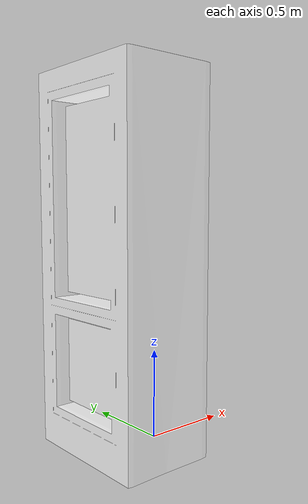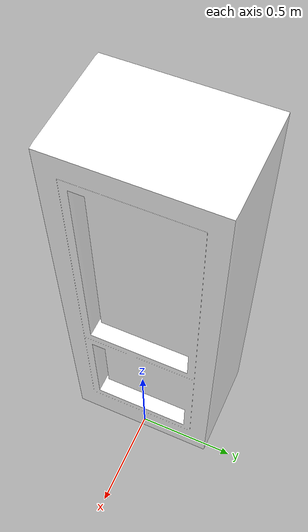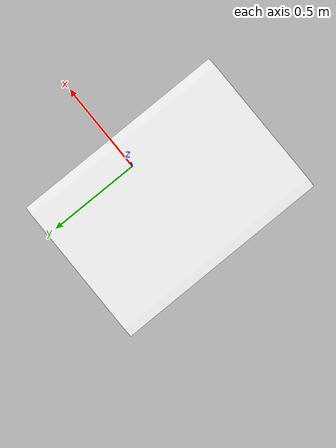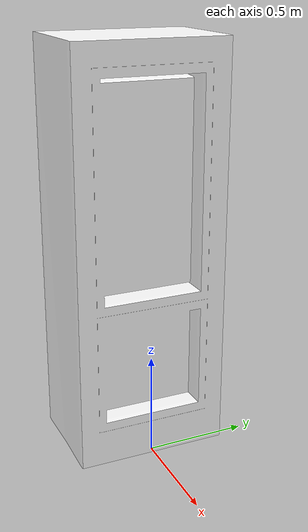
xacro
<?xml version="1.0" ?>
<!-- |    This document was autogenerated by xacro from /home/niklas/Desktop/DAP-Object_Generation/src/urdf_xacro/plane.xacro | -->
<!-- |    EDITING THIS FILE BY HAND IS NOT RECOMMENDED                                 | -->
<robot name="door_plane">
  <link name="world"/>
  <joint name="door_world" type="fixed">
    <origin rpy="0 0 0" xyz="0 0 1"/>
    <parent link="world"/>
    <child link="plane"/>
    <axis xyz="0 0 0"/>
    <dynamics friction="0.4960139088111456"/>
    <limit lower="0.0" upper="1.57"/>
  </joint>
  <link name="plane">
    <visual>
      <origin xyz="0 0 0"/>
      <geometry>
        <mesh filename="../src/urdf_xacro/door2.obj" rpy="0 0 0" scale="13.0 1.0 1.0"/>
      </geometry>
      <material name="wood">
        <color rgba="1 1 1 1"/>
      </material>
    </visual>
  </link>
</robot>
